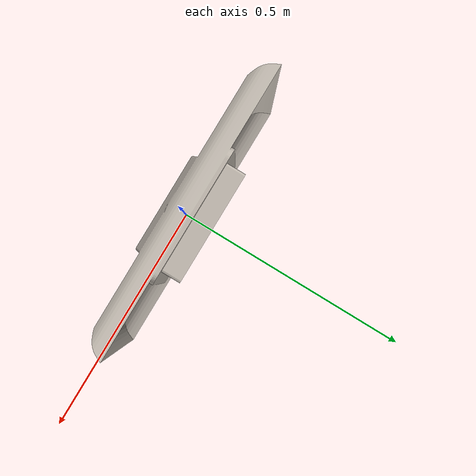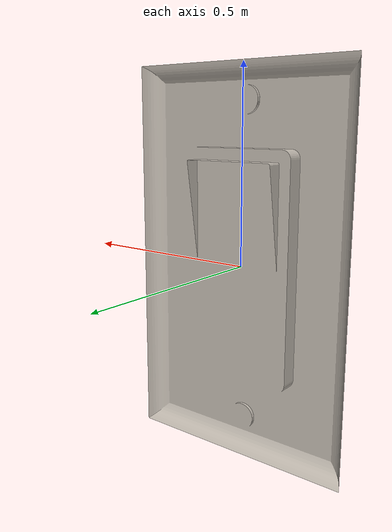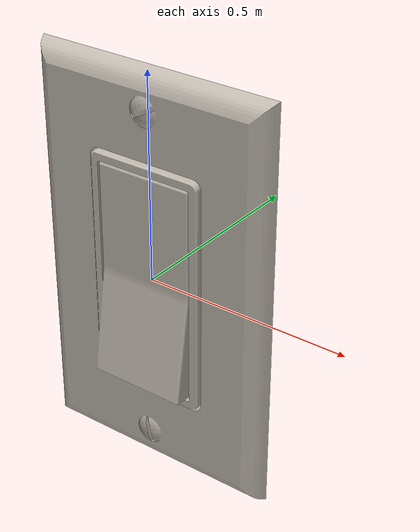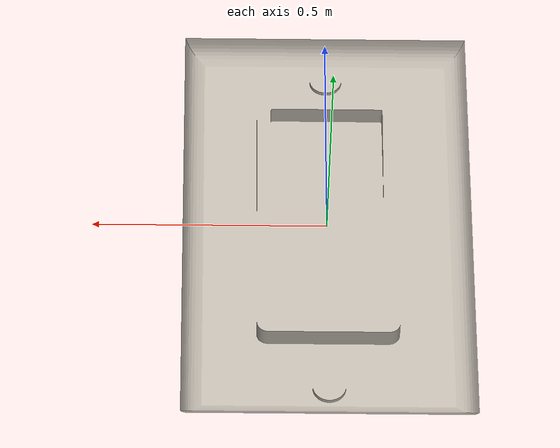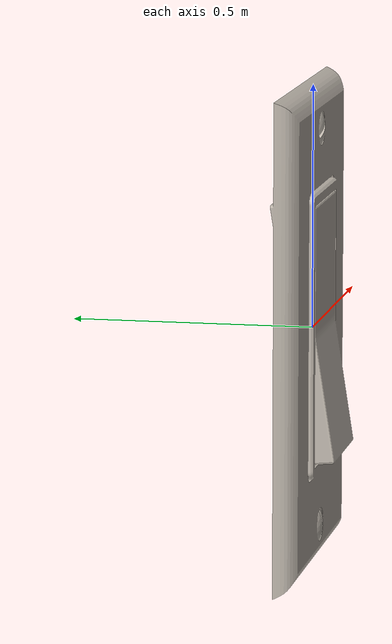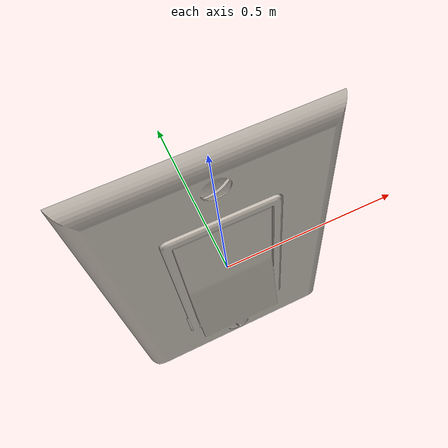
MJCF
<mujoco model="light_switch">
  <compiler angle="radian"/>
  <asset>
    <texture file="visuals/material_0.png" name="tex-light_switch" type="2d"/>
    <texture type="2d" name="image0" file="visuals/image0.png"/>
    <material name="light_switch" reflectance="0.5" texrepeat="1 1" texture="tex-light_switch" texuniform="false"/>
    <material name="lightswitch" texture="image0" specular="0.5" shininess="0.25"/>
    <mesh file="visuals/light_switch_0.obj" name="light_switch_0_vis" scale="1 1 1"/>
  </asset>
  <default>
    <default class="visual">
      <geom conaffinity="0" contype="0" group="1" type="mesh"/>
    </default>
    <default class="collision">
      <geom group="0" rgba="0.5 0 0 0.5"/>
    </default>
    <default class="region">
      <geom group="1" conaffinity="0" contype="0" rgba="0 1 0 0"/>
    </default>
  </default>
  <worldbody>
    <body>
      <!-- exterior bounding box points -->
      <!-- interior bounding box points -->
      <body name="object" euler="0 0 -1.57">
        <geom solimp="0.998 0.998 0.001" solref="0.001 1" density="100" friction="0.95 0.3 0.1" type="mesh" mesh="light_switch_0_vis" material="lightswitch" class="visual"/>
        <geom class="region" name="reg_main" type="box" pos="0.0 0.0 0.0" size="0.0001 0.0001 0.0001"/>
        <geom class="region" name="reg_int" type="box" pos="0.0 0.0 0.0" size="0.0001 0.0001 0.0001"/>
      </body>
    </body>
  </worldbody>
</mujoco>
